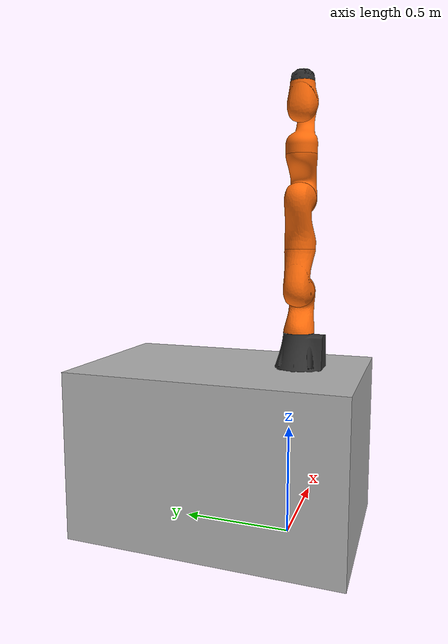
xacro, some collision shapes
<?xml version="1.0" ?>
<robot name="robot" xmlns:xacro="http://www.ros.org/wiki/xacro">
    <!-- Create links -->
    <link name="world"/>
    <link name="base_link"/>

    <!-- Import Rviz colors -->
    <xacro:include filename="$(find iiwa_description)/urdf/materials.xacro" />
    <!--Import the lbr iiwa macro -->
    <xacro:include filename="$(find iiwa_description)/urdf/iiwa7.xacro"/>
    <!-- Include robot -->
    <xacro:iiwa7 hardware_interface="PositionJointInterface" robot_name="iiwa" parent="base_link">
        <origin xyz="0.0 0 0.0" rpy="0 0 0"/>
    </xacro:iiwa7>

    <!-- Include workcell (creates joint from world to workcell_base)-->
    <xacro:include filename="$(find pick_and_place_support)/urdf/environment.xacro"/>
    <xacro:workcell parent_link="world" >
        <origin xyz="0.0 0.0 0.77153" rpy="0 0 0"/>
    </xacro:workcell >

    <xacro:cabinet id="1" parent_link="workcell_base" >
        <origin rpy="0 0 0" xyz="-0.3048 1.016 0.771525"/>
    </xacro:cabinet >

    <!-- Create joints -->
    <joint name="workcell_base_to_base" type="fixed">
      <parent link="workcell_base"/>
      <child link="base_link"/>
      <origin xyz="0 -0.0381 0.00953" rpy="0 0 1.5708"/>
    </joint>

</robot>

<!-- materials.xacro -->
<robot>

  <material name="Black">
    <color rgba="0.0 0.0 0.0 1.0"/>
  </material>

  <material name="Blue">
    <color rgba="0.0 0.0 0.8 1.0"/>
  </material>

  <material name="Green">
    <color rgba="0.0 0.8 0.0 1.0"/>
  </material>

  <material name="Grey">
    <color rgba="0.2 0.2 0.2 1.0"/>
  </material>

  <material name="Orange">
    <color rgba="${255/255} ${108/255} ${10/255} 1.0"/>
  </material>

  <material name="Brown">
    <color rgba="${222/255} ${207/255} ${195/255} 1.0"/>
  </material>

  <material name="Red">
    <color rgba="0.8 0.0 0.0 1.0"/>
  </material>

  <material name="White">
    <color rgba="1.0 1.0 1.0 1.0"/>
  </material>

</robot>

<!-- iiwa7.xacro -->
<robot xmlns:xacro="http://www.ros.org/wiki/xacro">

  <!-- Import all Gazebo-customization elements, including Gazebo colors -->
  <xacro:include filename="$(find iiwa_description)/urdf/iiwa.gazebo.xacro" />
  <!-- Import Transmissions -->
  <xacro:include filename="$(find iiwa_description)/urdf/iiwa.transmission.xacro" />
  <!-- Include Utilities -->
  <xacro:include filename="$(find iiwa_description)/urdf/utilities.xacro" />

  <!-- some constants -->
  <xacro:property name="safety_controller_k_pos" value="100" />
  <xacro:property name="safety_controller_k_vel" value="2" />
  <xacro:property name="joint_damping" value="0.5" />
  <xacro:property name="max_effort" value="300"/>
  <xacro:property name="max_velocity" value="10"/>

  <xacro:macro name="iiwa7" params="parent hardware_interface robot_name *origin">

    <!--joint between {parent} and link_0-->
    <joint name="${parent}_${robot_name}_joint" type="fixed">
      <xacro:insert_block name="origin"/>
      <parent link="${parent}"/>
      <child link="${robot_name}_link_0"/>
    </joint>

    <link name="${robot_name}_link_0">
      <inertial>
        <origin xyz="-0.1 0 0.07" rpy="0 0 0"/>
        <mass value="5"/>
        <inertia ixx="0.05"  ixy="0"  ixz="0" iyy="0.06" iyz="0" izz="0.03" />
      </inertial>

      <visual>
        <origin xyz="0 0 0" rpy="0 0 0"/>
        <geometry>
          <mesh filename="package://iiwa_description/meshes/iiwa7/visual/link_0.stl"/>
        </geometry>
        <material name="Grey"/>
      </visual>

      <collision>
        <origin xyz="0 0 0" rpy="0 0 0"/>
        <geometry>
          <mesh filename="package://iiwa_description/meshes/iiwa7/collision/link_0.stl"/>
        </geometry>
      </collision>

    </link>

    <!-- joint between link_0 and link_1 -->
    <joint name="${robot_name}_joint_1" type="revolute">
      <parent link="${robot_name}_link_0"/>
      <child link="${robot_name}_link_1"/>
      <origin xyz="0 0 0.15" rpy="0 0 0"/>
      <axis xyz="0 0 1"/>
      <limit lower="${-170 * PI / 180}" upper="${170 * PI / 180}"
             effort="${max_effort}" velocity="${max_velocity}" />
      <safety_controller soft_lower_limit="${-168 * PI / 180}"
                         soft_upper_limit="${168 * PI / 180}"
                         k_position="${safety_controller_k_pos}"
                         k_velocity="${safety_controller_k_vel}"/>
      <dynamics damping="${joint_damping}"/>
    </joint>

    <link name="${robot_name}_link_1">
      <inertial>
        <origin xyz="0 -0.03 0.12" rpy="0 0 0"/>
        <mass value="3.4525"/>
        <inertia ixx="0.02183"  ixy="0"  ixz="0" iyy="0.007703" iyz="-0.003887" izz="0.02083" />
      </inertial>
      <visual>
        <origin xyz="0 0 0.0075" rpy="0 0 0"/>
        <geometry>
          <mesh filename="package://iiwa_description/meshes/iiwa7/visual/link_1.stl"/>
        </geometry>
        <material name="Orange"/>
      </visual>
      <collision>
        <origin xyz="0 0 0.0075" rpy="0 0 0"/>
        <geometry>
          <mesh filename="package://iiwa_description/meshes/iiwa7/collision/link_1.stl"/>
        </geometry>
      </collision>
    </link>

    <joint name="${robot_name}_joint_2" type="revolute">
      <parent link="${robot_name}_link_1"/>
      <child link="${robot_name}_link_2"/>
      <origin xyz="0 0 0.19" rpy="${PI / 2}   0 ${PI}"/>
      <axis xyz="0 0 1"/>
      <limit lower="${-120 * PI / 180}" upper="${120 * PI / 180}"
             effort="${max_effort}" velocity="${max_velocity}" />
      <safety_controller soft_lower_limit="${-118 * PI / 180}"
                         soft_upper_limit="${118 * PI / 180}"
                         k_position="${safety_controller_k_pos}"
                         k_velocity="${safety_controller_k_vel}"/>
      <dynamics damping="${joint_damping}"/>
    </joint>

    <link name="${robot_name}_link_2">
      <inertial>
        <origin xyz="0.0003 0.059 0.042" rpy="0 0 0"/>
        <mass value="3.4821"/>
        <inertia ixx="0.02076"  ixy="0"  ixz="-0.003626" iyy="0.02179" iyz="0" izz="0.00779" />
      </inertial>
      <visual>
        <origin xyz="0 0 0" rpy="0 0 0"/>
        <geometry>
          <mesh filename="package://iiwa_description/meshes/iiwa7/visual/link_2.stl"/>
        </geometry>
        <material name="Orange"/>
      </visual>

      <collision>
        <origin xyz="0 0 0" rpy="0 0 0"/>
        <geometry>
          <mesh filename="package://iiwa_description/meshes/iiwa7/collision/link_2.stl"/>
        </geometry>
      </collision>
    </link>

    <joint name="${robot_name}_joint_3" type="revolute">
      <parent link="${robot_name}_link_2"/>
      <child link="${robot_name}_link_3"/>
      <origin xyz="0 0.21 0" rpy="${PI / 2} 0 ${PI}"/>
      <axis xyz="0 0 1"/>
      <limit lower="${-170 * PI / 180}" upper="${170 * PI / 180}"
             effort="${max_effort}" velocity="${max_velocity}" />
      <safety_controller soft_lower_limit="${-168 * PI / 180}"
                         soft_upper_limit="${168 * PI / 180}"
                         k_position="${safety_controller_k_pos}"
                         k_velocity="${safety_controller_k_vel}"/>
      <dynamics damping="${joint_damping}"/>
    </joint>

    <link name="${robot_name}_link_3">
      <inertial>
        <origin xyz="0 0.03 0.13" rpy="0 0 0"/>
        <mass value="4.05623"/>
        <inertia ixx="0.03204"  ixy="0"  ixz="0" iyy="0.00972" iyz="0.006227" izz="0.03042" />
      </inertial>

      <visual>
        <origin xyz="0 0 -0.026" rpy="0 0 0"/>
        <geometry>
          <mesh filename="package://iiwa_description/meshes/iiwa7/visual/link_3.stl"/>
        </geometry>
        <material name="Orange"/>
      </visual>

      <collision>
        <origin xyz="0 0 -0.026" rpy="0 0 0"/>
        <geometry>
          <mesh filename="package://iiwa_description/meshes/iiwa7/collision/link_3.stl"/>
        </geometry>
      </collision>

    </link>

    <joint name="${robot_name}_joint_4" type="revolute">
      <parent link="${robot_name}_link_3"/>
      <child link="${robot_name}_link_4"/>
      <origin xyz="0 0 0.19" rpy="${PI / 2} 0 0"/>
      <axis xyz="0 0 1"/>
      <limit lower="${-120 * PI / 180}" upper="${120 * PI / 180}"
             effort="${max_effort}" velocity="${max_velocity}" />
      <safety_controller soft_lower_limit="${-118 * PI / 180}"
                         soft_upper_limit="${118 * PI / 180}"
                         k_position="${safety_controller_k_pos}"
                         k_velocity="${safety_controller_k_vel}"/>
      <dynamics damping="${joint_damping}"/>
    </joint>

    <link name="${robot_name}_link_4">
      <inertial>
        <origin xyz="0 0.067 0.034" rpy="0 0 0"/>
        <mass value="3.4822"/>
        <inertia ixx="0.02178"  ixy="0"  ixz="0" iyy="0.02075" iyz="-0.003625" izz="0.007785" />
      </inertial>

      <visual>
        <origin xyz="0 0 0" rpy="0 0 0"/>
        <geometry>
          <mesh filename="package://iiwa_description/meshes/iiwa7/visual/link_4.stl"/>
        </geometry>
        <material name="Orange"/>
      </visual>

      <collision>
        <origin xyz="0 0 0" rpy="0 0 0"/>
        <geometry>
          <mesh filename="package://iiwa_description/meshes/iiwa7/collision/link_4.stl"/>
        </geometry>
      </collision>
    </link>

    <joint name="${robot_name}_joint_5" type="revolute">
      <parent link="${robot_name}_link_4"/>
      <child link="${robot_name}_link_5"/>
      <origin xyz="0 0.21 0" rpy="${-PI / 2} ${PI} 0"/>
      <axis xyz="0 0 1"/>
      <limit lower="${-170 * PI / 180}" upper="${170 * PI / 180}"
             effort="${max_effort}" velocity="${max_velocity}" />
      <safety_controller soft_lower_limit="${-168 * PI / 180}"
                         soft_upper_limit="${168 * PI / 180}"
                         k_position="${safety_controller_k_pos}"
                         k_velocity="${safety_controller_k_vel}"/>
      <dynamics damping="${joint_damping}"/>
    </joint>

    <link name="${robot_name}_link_5">
      <inertial>
        <origin xyz="0.0001 0.021 0.076" rpy="0 0 0"/>
        <mass value="2.1633"/>
        <inertia ixx="0.01287"  ixy="0"  ixz="0" iyy="0.005708" iyz="-0.003946" izz="0.01112" />
      </inertial>

      <visual>
        <origin xyz="0 0 -0.026" rpy="0 0 0"/>
        <geometry>
          <mesh filename="package://iiwa_description/meshes/iiwa7/visual/link_5.stl"/>
        </geometry>
        <material name="Orange"/>
      </visual>

      <collision>
        <origin xyz="0 0 -0.026" rpy="0 0 0"/>
        <geometry>
          <mesh filename="package://iiwa_description/meshes/iiwa7/collision/link_5.stl"/>
        </geometry>
      </collision>
    </link>

    <joint name="${robot_name}_joint_6" type="revolute">
      <parent link="${robot_name}_link_5"/>
      <child link="${robot_name}_link_6"/>
      <origin xyz="0 0.06070 0.19" rpy="${PI / 2} 0 0"/>
      <axis xyz="0 0 1"/>
      <limit lower="${-120 * PI / 180}" upper="${120 * PI / 180}"
             effort="${max_effort}" velocity="${max_velocity}" />
      <safety_controller soft_lower_limit="${-118 * PI / 180}"
                         soft_upper_limit="${118 * PI / 180}"
                         k_position="${safety_controller_k_pos}"
                         k_velocity="${safety_controller_k_vel}"/>
      <dynamics damping="${joint_damping}"/>
    </joint>

    <link name="${robot_name}_link_6">
      <inertial>
        <origin xyz="0 0.0006 0.0004" rpy="0 0 0"/>
        <mass value="2.3466"/>
        <inertia ixx="0.006509"  ixy="0"  ixz="0" iyy="0.006259" iyz="0.00031891" izz="0.004527" />
      </inertial>

      <visual>
        <origin xyz="0 0 0" rpy="0 0 0"/>
        <geometry>
          <mesh filename="package://iiwa_description/meshes/iiwa7/visual/link_6.stl"/>
        </geometry>
        <material name="Orange"/>
      </visual>

      <collision>
        <origin xyz="0 0 0" rpy="0 0 0"/>
        <geometry>
          <mesh filename="package://iiwa_description/meshes/iiwa7/collision/link_6.stl"/>
        </geometry>
      </collision>
    </link>

    <joint name="${robot_name}_joint_7" type="revolute">
      <parent link="${robot_name}_link_6"/>
      <child link="${robot_name}_link_7"/>
      <origin xyz="0 0.081 0.06070" rpy="${- PI / 2} ${PI} 0"/>
      <axis xyz="0 0 1"/>
      <limit lower="${-175 * PI / 180}" upper="${175 * PI / 180}"
             effort="${max_effort}" velocity="${max_velocity}" />
      <safety_controller soft_lower_limit="${-173 * PI / 180}"
                         soft_upper_limit="${173 * PI / 180}"
                         k_position="${safety_controller_k_pos}"
                         k_velocity="${safety_controller_k_vel}"/>
      <dynamics damping="${joint_damping}"/>
    </joint>

    <link name="${robot_name}_link_7">
      <inertial>
        <origin xyz="0 0 0.02" rpy="0 0 0"/>
        <mass value="3.129"/>
        <inertia ixx="0.01464"  ixy="0.0005912"  ixz="0" iyy="0.01465" iyz="0" izz="0.002872" />
      </inertial>

      <visual>
        <origin xyz="0 0 -0.0005" rpy="0 0 0"/>
        <geometry>
          <mesh filename="package://iiwa_description/meshes/iiwa7/visual/link_7.stl"/>
        </geometry>
        <material name="Grey"/>
      </visual>

      <collision>
        <origin xyz="0 0 -0.0005" rpy="0 0 0"/>
        <geometry>
          <mesh filename="package://iiwa_description/meshes/iiwa7/collision/link_7.stl"/>
        </geometry>
      </collision>
    </link>

    <joint name="${robot_name}_joint_ee" type="fixed">
      <parent link="${robot_name}_link_7"/>
      <child link="${robot_name}_link_ee"/>
      <origin xyz="0 0 0.045" rpy="0 0 0"/>
    </joint>

    <link name="${robot_name}_link_ee">
    </link>

    <!--Extensions -->
    <xacro:iiwa_gazebo robot_name="${robot_name}" />
    <xacro:iiwa_transmission hardware_interface="${hardware_interface}"/>

  </xacro:macro>

</robot>

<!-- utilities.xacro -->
<robot name="iiwa" xmlns:xacro="http://www.ros.org/wiki/xacro">

  <xacro:property name="PI" value="3.1415926535897931"/>

<!-- The following macros are adapted from the LWR 4 definitions of the RCPRG - https://github.com/RCPRG-ros-pkg/lwr_robot -->
  <!--Little helper macros to define the inertia matrix needed for links.-->
  <!--Cuboid-->
  <xacro:macro name="cuboid_inertia" params="width height length mass">
    <inertia ixx="${mass * (height * height + length * length) / 12)}"
             iyy="${mass * (width * width + length * length) / 12)}"
             izz="${mass * (width * width + height * height) / 12)}"
             ixy="0" iyz="0" ixz="0"/>
  </xacro:macro>

  <!--Cylinder: length is along the y-axis! -->
  <xacro:macro name="cylinder_inertia" params="radius length mass">
    <inertia ixx="${mass * (3 * radius * radius + length * length) / 12)}"
             iyy="${mass * radius* radius / 2)}"
             izz="${mass * (3 * radius * radius + length * length) / 12)}"
             ixy="0" iyz="0" ixz="0"/>
  </xacro:macro>

</robot>

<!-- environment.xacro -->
<robot name="environment" xmlns:xacro="http://www.ros.org/wiki/xacro">

<xacro:macro name="workcell" params="parent_link *location">

  <material name="light_gray">
    <color rgba="0.7 0.7 0.7 1"/>
  </material>
  <material name="red">
    <color rgba="1.0 0.1 0.1 1"/>
  </material>

  <link name="workcell_base">
    <visual>
      <geometry>
        <mesh filename="package://pick_and_place_support/meshes/workcell.STL"/>
      </geometry>
      <material name="light_gray"/>
    </visual>
    <collision name="workcell_table">
      <geometry>
        <box size="0.8 1.25 0.77153"/>
      </geometry>
      <origin xyz="0.0 0.3 -0.385765"/>
    </collision>
    <collision name="workcell_columnSW">
      <geometry>
        <box size="0.1 0.1 1.25"/>
      </geometry>
      <origin xyz="-.3302 -.2794 0.6"/>
    </collision>
    <collision name="workcell_columnsSE">
      <geometry>
        <box size="0.1 0.1 1.25"/>
      </geometry>
      <origin xyz=".3302 -.2794 0.6"/>
    </collision>
    <collision name="workcell_columnNW">
      <geometry>
        <box size="0.1 0.1 1.25"/>
      </geometry>
      <origin xyz="-.3302 0.8382 0.6"/>colors
    </collision>
    <collision name="workcell_columnNE">
      <geometry>
        <box size="0.1 0.1 1.25"/>
      </geometry>
      <origin xyz=".3302 0.8382 0.6"/>
    </collision>
    <collision name="workcell_top">
      <geometry>
        <box size="0.95 1.4 0.2"/>
      </geometry>
      <origin xyz="0.0 0.3 1.2"/>
    </collision>
  </link>

  <joint name="workcell_joint" type ="fixed">
    <xacro:insert_block name="location" />
    <parent link="${parent_link}"/>
    <child link="workcell_base"/>
  </joint>
</xacro:macro>

<!-- Shelf -->
<xacro:macro name="cabinet" params="id parent_link *location">
  <link name="cabinet_${id}">
  <collision>
    <geometry>
      <mesh filename="package://pick_and_place_support/meshes/cabinet.STL"/>
    </geometry>
  </collision>
  </link>
<joint name="cabinet_${id}_joint" type ="fixed">
  <xacro:insert_block name="location" />
  <parent link="${parent_link}"/>
  <child link="cabinet_${id}"/>
</joint>

</xacro:macro>

<!-- Shelf -->
<xacro:macro name="shelf" params="id parent_link *location">
  <link name="shelf_${id}">
  <visual>
    <geometry>
      <mesh filename="package://pick_and_place_support/meshes/shelf.STL"/>
    </geometry>
    <material name="light_gray"/>
  </visual>

    <collision name="shelf_${id}_back">
      <geometry>
        <box size="0.9144 0.05 1.8288"/>
      </geometry>
      <origin xyz="0.4572 0.0 0.9144"/>
    </collision>
    <collision name="shelf_${id}_sideL">
      <geometry>
        <box size="0.05 0.5096 1.8288"/>
      </geometry>
      <origin xyz="0.025 0.22 0.9144"/>
    </collision>
    <collision name="shelf_${id}_sideR">
      <geometry>
        <box size="0.05 0.5096 1.8288"/>
      </geometry>
      <origin xyz=".945 0.22 0.9144"/>
    </collision>
    <collision name="shelf_${id}_shelf1">
      <geometry>
        <box size="0.9144 0.5096 0.05"/>
      </geometry>
      <origin xyz=".4572 0.22 0.025"/>
    </collision>
    <collision name="shelf_${id}_shelf2">
      <geometry>
        <box size="0.9144 0.5096 0.05"/>
      </geometry>
      <origin xyz=".4572 0.22 0.6346"/>
    </collision>
    <collision name="shelf_${id}_shelf3">
      <geometry>
        <box size="0.9144 0.5096 0.05"/>
      </geometry>
      <origin xyz=".4572 0.22 1.2442"/>
    </collision>
    <collision name="shelf_${id}_shelf4">
       <geometry>
         <box size="0.9144 0.5096 0.05"/>
       </geometry>
       <origin xyz=".4572 0.22 1.8038"/>
    </collision>
  </link>

  <joint name="shelf_${id}_joint" type ="fixed">
    <xacro:insert_block name="location" />
    <parent link="${parent_link}"/>
    <child link="shelf_${id}"/>
  </joint>

</xacro:macro>

</robot>
